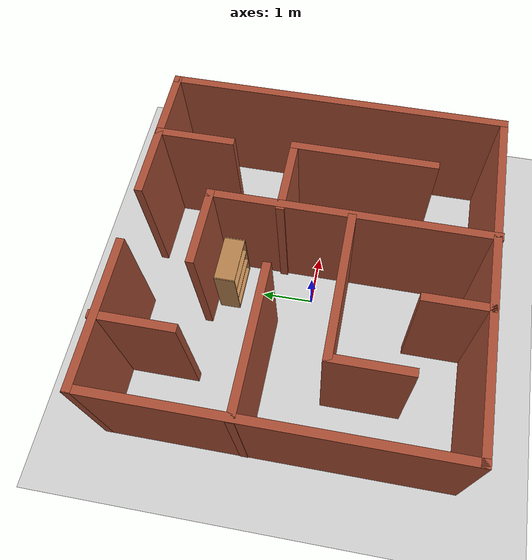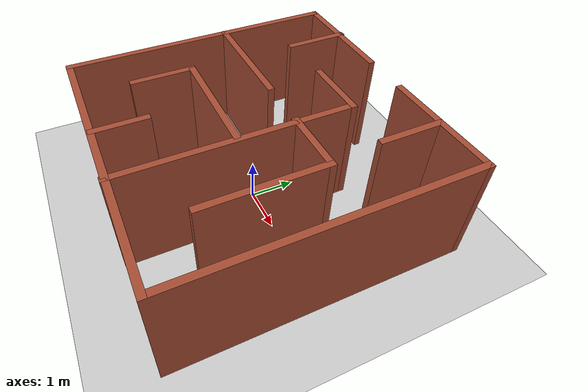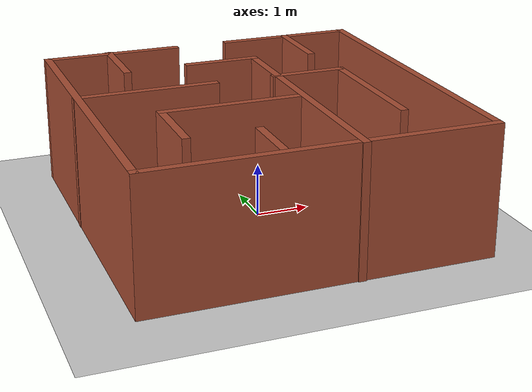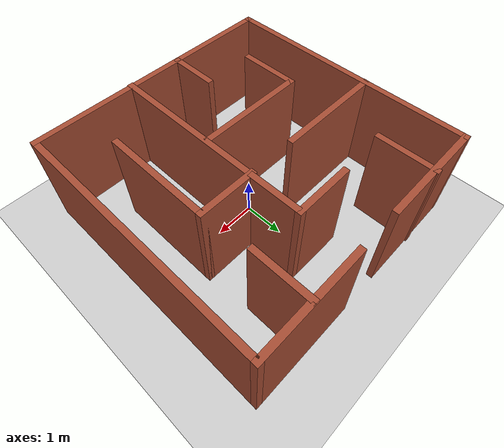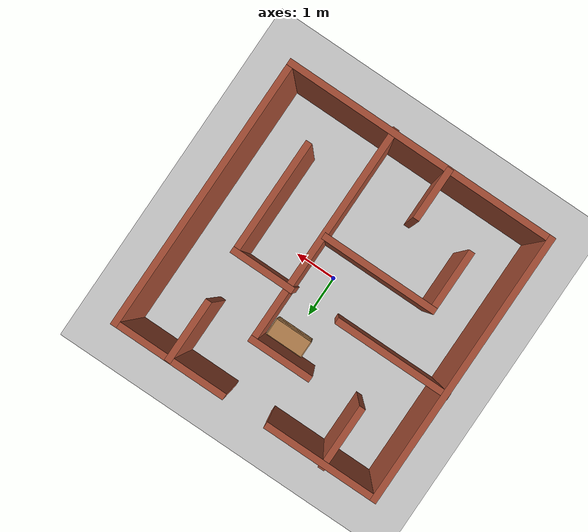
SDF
<sdf version="1.7">
 <world name="default">
  <light name="sun" type="directional">
   <pose>0 0 10 0 -0 0</pose>
   <diffuse>0.8 0.8 0.8 1</diffuse>
   <specular>0.2 0.2 0.2 1</specular>
   <attenuation>
    <range>1000</range>
    <constant>0.9</constant>
    <linear>0.01</linear>
    <quadratic>0.001</quadratic>
   </attenuation>
   <direction>-0.5 0.1 -0.9</direction>
   <spot><inner_angle>0</inner_angle><outer_angle>0</outer_angle><falloff>0</falloff></spot>
  </light>
  <model name="ground_plane">
   <static>1</static>
   <link name="link">
    <collision name="collision">
     <geometry><plane><normal>0 0 1</normal><size>100 100</size></plane></geometry>
     <surface>
      <contact><collide_bitmask>65535</collide_bitmask></contact>
      <friction><ode><mu>100</mu><mu2>50</mu2></ode></friction>
     </surface>
    </collision>
    <visual name="visual">
     <cast_shadows>0</cast_shadows>
     <geometry><plane><normal>0 0 1</normal><size>100 100</size></plane></geometry>
     <material>
      <script><uri>file://media/materials/scripts/gazebo.material</uri><name>Gazebo/Grey</name></script>
     </material>
    </visual>
   </link>
  </model>
  <gravity>0 0 -9.8</gravity>
  <magnetic_field>6e-06 2.3e-05 -4.2e-05</magnetic_field>
  <atmosphere type="adiabatic"/>
  <physics type="ode">
   <max_step_size>0.001</max_step_size>
   <real_time_factor>1</real_time_factor>
   <real_time_update_rate>1000</real_time_update_rate>
  </physics>
  <scene><ambient>0.4 0.4 0.4 1</ambient><background>0.7 0.7 0.7 1</background><shadows>1</shadows></scene>
  <audio><device>default</device></audio>
  <spherical_coordinates>
   <surface_model>EARTH_WGS84</surface_model>
   <latitude_deg>0</latitude_deg>
   <longitude_deg>0</longitude_deg>
   <elevation>0</elevation>
   <heading_deg>0</heading_deg>
  </spherical_coordinates>
  <model name="maze_1">
   <pose>-0.030835 0.060847 0 0 -0 0</pose>
   <link name="Wall_1">
    <collision name="Wall_1_Collision">
     <geometry><box><size>6.5 0.15 2.5</size></box></geometry>
     <pose>0 0 1.25 0 -0 0</pose>
    </collision>
    <visual name="Wall_1_Visual">
     <pose>0 0 1.25 0 -0 0</pose>
     <geometry><box><size>6.5 0.15 2.5</size></box></geometry>
     <material>
      <script><uri>file://media/materials/scripts/gazebo.material</uri><name>Gazebo/Bricks</name></script>
      <ambient>1 1 1 1</ambient>
     </material>
     <meta><layer>0</layer></meta>
    </visual>
    <pose>-3.17116 -0.004847 0 0 -0 -1.5708</pose>
   </link>
   <link name="Wall_10">
    <collision name="Wall_10_Collision">
     <geometry><box><size>1.5 0.15 2.5</size></box></geometry>
     <pose>0 0 1.25 0 -0 0</pose>
    </collision>
    <visual name="Wall_10_Visual">
     <pose>0 0 1.25 0 -0 0</pose>
     <geometry><box><size>1.5 0.15 2.5</size></box></geometry>
     <material>
      <script><uri>file://media/materials/scripts/gazebo.material</uri><name>Gazebo/Bricks</name></script>
      <ambient>1 1 1 1</ambient>
     </material>
     <meta><layer>0</layer></meta>
    </visual>
    <pose>1.31272 0.612961 0 0 -0 0</pose>
   </link>
   <link name="Wall_11">
    <collision name="Wall_11_Collision">
     <geometry><box><size>2.75 0.15 2.5</size></box></geometry>
     <pose>0 0 1.25 0 -0 0</pose>
    </collision>
    <visual name="Wall_11_Visual">
     <pose>0 0 1.25 0 -0 0</pose>
     <geometry><box><size>2.75 0.15 2.5</size></box></geometry>
     <material>
      <script><uri>file://media/materials/scripts/gazebo.material</uri><name>Gazebo/Bricks</name></script>
      <ambient>1 1 1 1</ambient>
     </material>
     <meta><layer>0</layer></meta>
    </visual>
    <pose>1.98771 -0.687039 0 0 -0 -1.5708</pose>
   </link>
   <link name="Wall_13">
    <collision name="Wall_13_Collision">
     <geometry><box><size>1.5 0.15 2.5</size></box></geometry>
     <pose>0 0 1.25 0 -0 0</pose>
    </collision>
    <visual name="Wall_13_Visual">
     <pose>0 0 1.25 0 -0 0</pose>
     <geometry><box><size>1.5 0.15 2.5</size></box></geometry>
     <material>
      <script><uri>file://media/materials/scripts/gazebo.material</uri><name>Gazebo/Bricks</name></script>
      <ambient>1 1 1 1</ambient>
     </material>
     <meta><layer>0</layer></meta>
    </visual>
    <pose>1.86364 2.48233 0 0 -0 -1.5708</pose>
   </link>
   <link name="Wall_15">
    <collision name="Wall_15_Collision">
     <geometry><box><size>1.5 0.15 2.5</size></box></geometry>
     <pose>0 0 1.25 0 -0 0</pose>
    </collision>
    <visual name="Wall_15_Visual">
     <pose>0 0 1.25 0 -0 0</pose>
     <geometry><box><size>1.5 0.15 2.5</size></box></geometry>
     <material>
      <script><uri>file://media/materials/scripts/gazebo.material</uri><name>Gazebo/Bricks</name></script>
      <ambient>1 1 1 1</ambient>
     </material>
     <meta><layer>0</layer></meta>
    </visual>
    <pose>0.008976 1.89641 0 0 -0 3.14159</pose>
   </link>
   <link name="Wall_17">
    <collision name="Wall_17_Collision">
     <geometry><box><size>2.75 0.15 2.5</size></box></geometry>
     <pose>0 0 1.25 0 -0 0</pose>
    </collision>
    <visual name="Wall_17_Visual">
     <pose>0 0 1.25 0 -0 0</pose>
     <geometry><box><size>2.75 0.15 2.5</size></box></geometry>
     <material>
      <script><uri>file://media/materials/scripts/gazebo.material</uri><name>Gazebo/Bricks</name></script>
      <ambient>1 1 1 1</ambient>
     </material>
     <meta><layer>0</layer></meta>
    </visual>
    <pose>-1.87116 3.17015 0 0 -0 0</pose>
   </link>
   <link name="Wall_19">
    <collision name="Wall_19_Collision">
     <geometry><box><size>1.5 0.15 2.5</size></box></geometry>
     <pose>0 0 1.25 0 -0 0</pose>
    </collision>
    <visual name="Wall_19_Visual">
     <pose>0 0 1.25 0 -0 0</pose>
     <geometry><box><size>1.5 0.15 2.5</size></box></geometry>
     <material>
      <script><uri>file://media/materials/scripts/gazebo.material</uri><name>Gazebo/Bricks</name></script>
      <ambient>1 1 1 1</ambient>
     </material>
     <meta><layer>0</layer></meta>
    </visual>
    <pose>-1.92978 2.52859 0 0 -0 -1.5708</pose>
   </link>
   <link name="Wall_21">
    <collision name="Wall_21_Collision">
     <geometry><box><size>2.75 0.15 2.5</size></box></geometry>
     <pose>0 0 1.25 0 -0 0</pose>
    </collision>
    <visual name="Wall_21_Visual">
     <pose>0 0 1.25 0 -0 0</pose>
     <geometry><box><size>2.75 0.15 2.5</size></box></geometry>
     <material>
      <script><uri>file://media/materials/scripts/gazebo.material</uri><name>Gazebo/Bricks</name></script>
      <ambient>1 1 1 1</ambient>
     </material>
     <meta><layer>0</layer></meta>
    </visual>
    <pose>-1.87884 0.612961 0 0 -0 0</pose>
   </link>
   <link name="Wall_26">
    <collision name="Wall_26_Collision">
     <geometry><box><size>2.75 0.15 2.5</size></box></geometry>
     <pose>0 0 1.25 0 -0 0</pose>
    </collision>
    <visual name="Wall_26_Visual">
     <pose>0 0 1.25 0 -0 0</pose>
     <geometry><box><size>2.75 0.15 2.5</size></box></geometry>
     <material>
      <script><uri>file://media/materials/scripts/gazebo.material</uri><name>Gazebo/Bricks</name></script>
      <ambient>1 1 1 1</ambient>
     </material>
     <meta><layer>0</layer></meta>
    </visual>
    <pose>-0.685416 -0.659222 0 0 -0 3.14159</pose>
   </link>
   <link name="Wall_27">
    <collision name="Wall_27_Collision">
     <geometry><box><size>1.5 0.15 2.5</size></box></geometry>
     <pose>0 0 1.25 0 -0 0</pose>
    </collision>
    <visual name="Wall_27_Visual">
     <pose>0 0 1.25 0 -0 0</pose>
     <geometry><box><size>1.5 0.15 2.5</size></box></geometry>
     <material>
      <script><uri>file://media/materials/scripts/gazebo.material</uri><name>Gazebo/Bricks</name></script>
      <ambient>1 1 1 1</ambient>
     </material>
     <meta><layer>0</layer></meta>
    </visual>
    <pose>-1.98542 -1.33422 0 0 -0 -1.5708</pose>
   </link>
   <link name="Wall_29">
    <collision name="Wall_29_Collision">
     <geometry><box><size>1.25 0.15 2.5</size></box></geometry>
     <pose>0 0 1.25 0 -0 0</pose>
    </collision>
    <visual name="Wall_29_Visual">
     <pose>0 0 1.25 0 -0 0</pose>
     <geometry><box><size>1.25 0.15 2.5</size></box></geometry>
     <material>
      <script><uri>file://media/materials/scripts/gazebo.material</uri><name>Gazebo/Bricks</name></script>
      <ambient>1 1 1 1</ambient>
     </material>
     <meta><layer>0</layer></meta>
    </visual>
    <pose>-0.68073 -2.60733 0 0 -0 1.5708</pose>
   </link>
   <link name="Wall_3">
    <collision name="Wall_3_Collision">
     <geometry><box><size>6.5 0.15 2.5</size></box></geometry>
     <pose>0 0 1.25 0 -0 0</pose>
    </collision>
    <visual name="Wall_3_Visual">
     <pose>0 0 1.25 0 -0 0</pose>
     <geometry><box><size>6.5 0.15 2.5</size></box></geometry>
     <material>
      <script><uri>file://media/materials/scripts/gazebo.material</uri><name>Gazebo/Bricks</name></script>
      <ambient>1 1 1 1</ambient>
     </material>
     <meta><layer>0</layer></meta>
    </visual>
    <pose>0.003835 -3.17985 0 0 -0 0</pose>
   </link>
   <link name="Wall_4">
    <collision name="Wall_4_Collision">
     <geometry><box><size>6.5 0.15 2.5</size></box></geometry>
     <pose>0 0 1.25 0 -0 0</pose>
    </collision>
    <visual name="Wall_4_Visual">
     <pose>0 0 1.25 0 -0 0</pose>
     <geometry><box><size>6.5 0.15 2.5</size></box></geometry>
     <material>
      <script><uri>file://media/materials/scripts/gazebo.material</uri><name>Gazebo/Bricks</name></script>
      <ambient>1 1 1 1</ambient>
     </material>
     <meta><layer>0</layer></meta>
    </visual>
    <pose>3.17883 -0.004847 0 0 -0 1.5708</pose>
   </link>
   <link name="Wall_5">
    <collision name="Wall_5_Collision">
     <geometry><box><size>2.75 0.15 2.5</size></box></geometry>
     <pose>0 0 1.25 0 -0 0</pose>
    </collision>
    <visual name="Wall_5_Visual">
     <pose>0 0 1.25 0 -0 0</pose>
     <geometry><box><size>2.75 0.15 2.5</size></box></geometry>
     <material>
      <script><uri>file://media/materials/scripts/gazebo.material</uri><name>Gazebo/Bricks</name></script>
      <ambient>1 1 1 1</ambient>
     </material>
     <meta><layer>0</layer></meta>
    </visual>
    <pose>1.87884 3.17015 0 0 -0 3.14159</pose>
   </link>
   <link name="Wall_7">
    <collision name="Wall_7_Collision">
     <geometry><box><size>5.25 0.15 2.5</size></box></geometry>
     <pose>0 0 1.25 0 -0 0</pose>
    </collision>
    <visual name="Wall_7_Visual">
     <pose>0 0 1.25 0 -0 0</pose>
     <geometry><box><size>5.25 0.15 2.5</size></box></geometry>
     <material>
      <script><uri>file://media/materials/scripts/gazebo.material</uri><name>Gazebo/Bricks</name></script>
      <ambient>1 1 1 1</ambient>
     </material>
     <meta><layer>0</layer></meta>
    </visual>
    <pose>0.683976 -0.653589 0 0 -0 1.5708</pose>
   </link>
   <static>1</static>
  </model>
  <model name="bookshelf">
   <static>1</static>
   <link name="link">
    <inertial><mass>1</mass></inertial>
    <collision name="back">
     <pose>0 0.005 0.6 0 -0 0</pose>
     <geometry><box><size>0.9 0.01 1.2</size></box></geometry>
    </collision>
    <visual name="visual1">
     <pose>0 0.005 0.6 0 -0 0</pose>
     <geometry><box><size>0.9 0.01 1.2</size></box></geometry>
     <material>
      <script><uri>file://media/materials/scripts/gazebo.material</uri><name>Gazebo/Wood</name></script>
     </material>
    </visual>
    <collision name="left_side">
     <pose>0.45 -0.195 0.6 0 -0 0</pose>
     <geometry><box><size>0.02 0.4 1.2</size></box></geometry>
    </collision>
    <visual name="visual2">
     <pose>0.45 -0.195 0.6 0 -0 0</pose>
     <geometry><box><size>0.02 0.4 1.2</size></box></geometry>
     <material>
      <script><uri>file://media/materials/scripts/gazebo.material</uri><name>Gazebo/Wood</name></script>
     </material>
    </visual>
    <collision name="right_side">
     <pose>-0.45 -0.195 0.6 0 -0 0</pose>
     <geometry><box><size>0.02 0.4 1.2</size></box></geometry>
    </collision>
    <visual name="visual3">
     <pose>-0.45 -0.195 0.6 0 -0 0</pose>
     <geometry><box><size>0.02 0.4 1.2</size></box></geometry>
     <material>
      <script><uri>file://media/materials/scripts/gazebo.material</uri><name>Gazebo/Wood</name></script>
     </material>
    </visual>
    <collision name="bottom">
     <pose>0 -0.195 0.03 0 -0 0</pose>
     <geometry><box><size>0.88 0.4 0.06</size></box></geometry>
    </collision>
    <visual name="visual4">
     <pose>0 -0.195 0.03 0 -0 0</pose>
     <geometry><box><size>0.88 0.4 0.06</size></box></geometry>
     <material>
      <script><uri>file://media/materials/scripts/gazebo.material</uri><name>Gazebo/Wood</name></script>
     </material>
    </visual>
    <collision name="top">
     <pose>0 -0.195 1.19 0 -0 0</pose>
     <geometry><box><size>0.88 0.4 0.02</size></box></geometry>
    </collision>
    <visual name="visual5">
     <pose>0 -0.195 1.19 0 -0 0</pose>
     <geometry><box><size>0.88 0.4 0.02</size></box></geometry>
     <material>
      <script><uri>file://media/materials/scripts/gazebo.material</uri><name>Gazebo/Wood</name></script>
     </material>
    </visual>
    <collision name="low_shelf">
     <pose>0 -0.195 0.43 0 -0 0</pose>
     <geometry><box><size>0.88 0.4 0.02</size></box></geometry>
    </collision>
    <visual name="visual6">
     <pose>0 -0.195 0.43 0 -0 0</pose>
     <geometry><box><size>0.88 0.4 0.02</size></box></geometry>
     <material>
      <script><uri>file://media/materials/scripts/gazebo.material</uri><name>Gazebo/Wood</name></script>
     </material>
    </visual>
    <collision name="high_shelf">
     <pose>0 -0.195 0.8 0 -0 0</pose>
     <geometry><box><size>0.88 0.4 0.02</size></box></geometry>
    </collision>
    <visual name="visual7">
     <pose>0 -0.195 0.8 0 -0 0</pose>
     <geometry><box><size>0.88 0.4 0.02</size></box></geometry>
     <material>
      <script><uri>file://media/materials/scripts/gazebo.material</uri><name>Gazebo/Wood</name></script>
     </material>
    </visual>
   </link>
   <pose>0.073931 1.80434 0 0 -0 0</pose>
  </model>
 </world>
</sdf>
